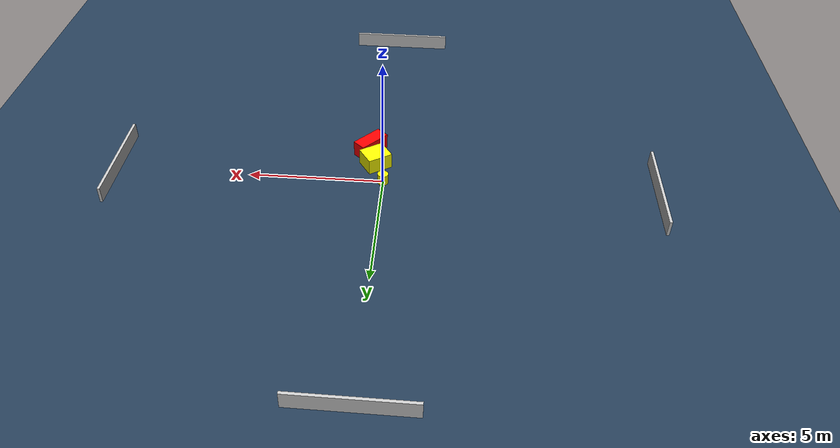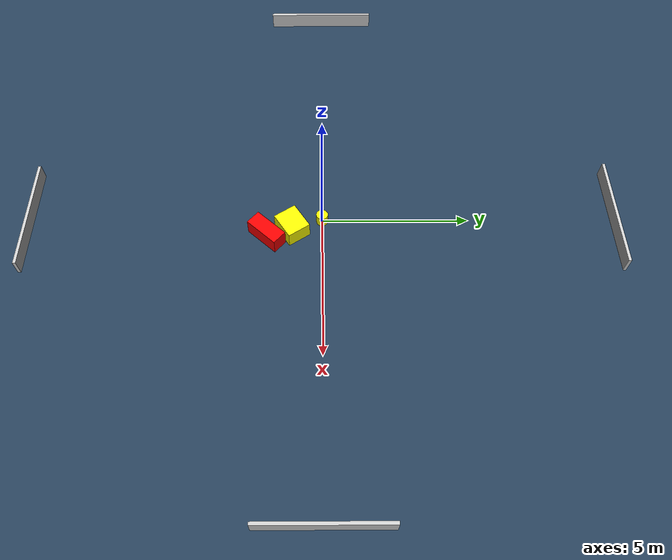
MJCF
<?xml version="1.0" ?>
<mujoco model="generated_environment">
  <option timestep="0.01" integrator="RK4" cone="elliptic"/>
  <default>
    <geom density="1"/>
  </default>
  <asset>
    <texture builtin="gradient" height="3072" name="skybox" rgb1="0.3 0.5 0.7" rgb2="0 0 0" type="skybox" width="512"/>
    <texture builtin="checker" height="300" name="groundplane" rgb1="0.2 0.3 0.4" rgb2="0.1 0.2 0.3" type="2d" width="300"/>
    <material name="groundplane" reflectance="0.2" texrepeat="5 5" texture="groundplane"/>
  </asset>
  <worldbody>
    <light dir="0 0 -1" directional="true" pos="0 0 1.5"/>
    <geom condim="3" friction="0.5 0.005 0.001" material="groundplane" name="floor" pos="0 0 0" size="0 0 0.05" type="plane"/>
    <body name="walls">
      <geom name="wall_1" condim="4" pos="-10.0 0.0 0.3" rgba="0.800000011920929 0.800000011920929 0.800000011920929 1.0" size="0.05 2.0 0.3" type="box"/>
      <geom name="wall_2" condim="4" pos="10.0 0.0 0.3" rgba="0.800000011920929 0.800000011920929 0.800000011920929 1.0" size="0.05 2.0 0.3" type="box"/>
      <geom name="wall_3" condim="4" pos="0.0 -10.0 0.3" rgba="0.800000011920929 0.800000011920929 0.800000011920929 1.0" size="2.0 0.05 0.3" type="box"/>
      <geom name="wall_4" condim="4" pos="0.0 10.0 0.3" rgba="0.800000011920929 0.800000011920929 0.800000011920929 1.0" size="2.0 0.05 0.3" type="box"/>
    </body>
    <body name="robot">
      <joint name="joint_x" type="slide" pos="0 0 0" axis="1 0 0"/>
      <joint name="joint_y" type="slide" pos="0 0 0" axis="0 1 0"/>
      <geom name="robot" type="cylinder" pos="0.0 0.0 0.2" size="0.2 0.2 0.0" mass="5.0" friction="1.0 0.005 0.0001" condim="4" rgba="1.0 1.0 0.0 1.0"/>
    </body>
    <body name="obstacle_1_movable">
      <geom name="obstacle_1_movable" condim="4" pos="0.3675488408456092 -1.024880409350882 0.3" euler="0 0 33.016103247594984" friction="0.0 0.005 0.001" rgba="1.0 1.0 0.0 1.0" size="0.4770025077325854 0.4095602209153331 0.3" type="box" mass="0.1"/>
      <joint type="free"/>
    </body>
    <body name="obstacle_2_static">
      <geom name="obstacle_2_static" condim="4" pos="0.6347554799410742 -1.8815107925742796 0.3" euler="0 0 137.9434531800966" friction="0.0 0.005 0.001" rgba="1.0 0.0 0.0 1.0" size="0.2674176574021769 0.6251767586498973 0.3" type="box"/>
    </body>
  </worldbody>
  <actuator>
    <motor name="actuator_x" joint="joint_x" gear="1" ctrlrange="-1 1"/>
    <motor name="actuator_y" joint="joint_y" gear="1" ctrlrange="-1 1"/>
  </actuator>
</mujoco>
